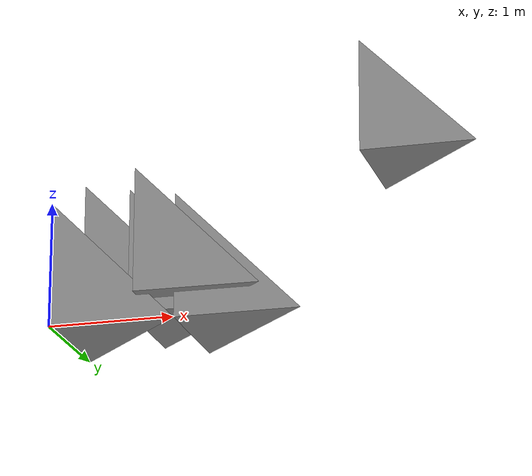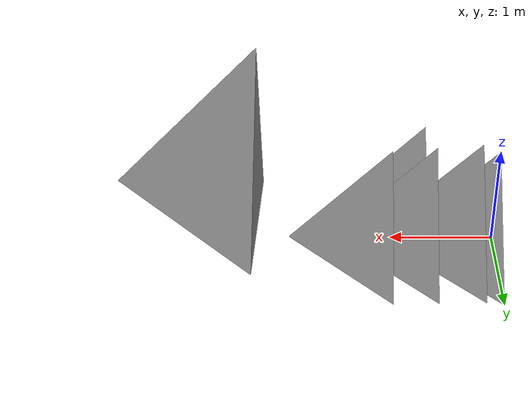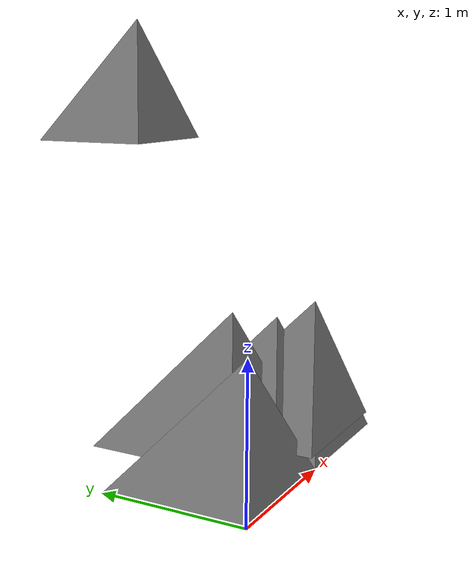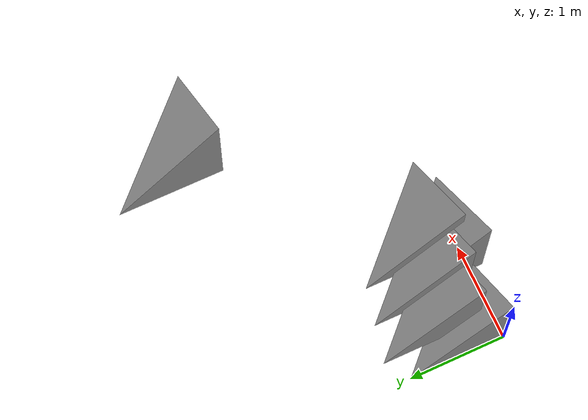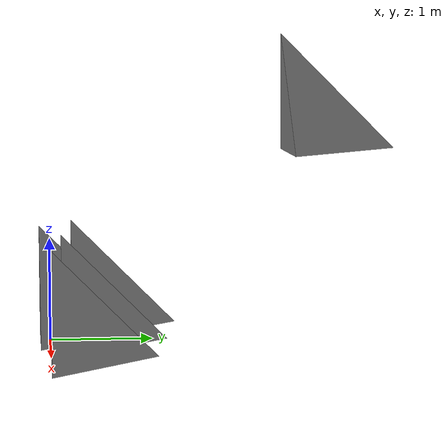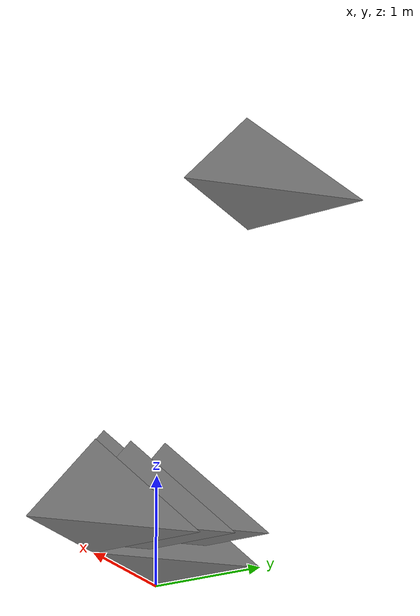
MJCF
<mujoco model="contact_route_mesh_mesh">
  <option gravity="0 0 0"/>
  <asset>
    <mesh name="tetra" vertex="0 0 0 1 0 0 0 1 0 0 0 1"
          face="0 2 1 0 1 3 0 3 2 1 2 3"/>
  </asset>
  <contact>
    <pair geom1="mesh_a_no_contact" geom2="mesh_b_no_contact"/>
    <pair geom1="mesh_a_shallow" geom2="mesh_b_shallow"/>
    <pair geom1="mesh_a_deep" geom2="mesh_b_deep"/>
    <pair geom1="mesh_a_off_axis" geom2="mesh_b_off_axis"/>
    <pair geom1="mesh_a_near_touch" geom2="mesh_b_near_touch"/>
  </contact>
  <worldbody>
    <body name="mesh_a_no_contact">
      <freejoint/>
      <inertial pos="0 0 0" mass="1" diaginertia="1 1 1"/>
      <geom name="mesh_a_no_contact" type="mesh" mesh="tetra"/>
    </body>
    <body name="mesh_b_no_contact" pos="2 2 2">
      <freejoint/>
      <inertial pos="0 0 0" mass="1" diaginertia="1 1 1"/>
      <geom name="mesh_b_no_contact" type="mesh" mesh="tetra"/>
    </body>
    <body name="mesh_a_shallow">
      <freejoint/>
      <inertial pos="0 0 0" mass="1" diaginertia="1 1 1"/>
      <geom name="mesh_a_shallow" type="mesh" mesh="tetra"/>
    </body>
    <body name="mesh_b_shallow" pos="0.6 0.1 0.1">
      <freejoint/>
      <inertial pos="0 0 0" mass="1" diaginertia="1 1 1"/>
      <geom name="mesh_b_shallow" type="mesh" mesh="tetra"/>
    </body>
    <body name="mesh_a_deep">
      <freejoint/>
      <inertial pos="0 0 0" mass="1" diaginertia="1 1 1"/>
      <geom name="mesh_a_deep" type="mesh" mesh="tetra"/>
    </body>
    <body name="mesh_b_deep" pos="0.2 0.2 0.2">
      <freejoint/>
      <inertial pos="0 0 0" mass="1" diaginertia="1 1 1"/>
      <geom name="mesh_b_deep" type="mesh" mesh="tetra"/>
    </body>
    <body name="mesh_a_off_axis">
      <freejoint/>
      <inertial pos="0 0 0" mass="1" diaginertia="1 1 1"/>
      <geom name="mesh_a_off_axis" type="mesh" mesh="tetra"/>
    </body>
    <body name="mesh_b_off_axis" pos="0.7 -0.1 0.2" euler="0.3 0.2 0.4">
      <freejoint/>
      <inertial pos="0 0 0" mass="1" diaginertia="1 1 1"/>
      <geom name="mesh_b_off_axis" type="mesh" mesh="tetra"/>
    </body>
    <body name="mesh_a_near_touch">
      <freejoint/>
      <inertial pos="0 0 0" mass="1" diaginertia="1 1 1"/>
      <geom name="mesh_a_near_touch" type="mesh" mesh="tetra"/>
    </body>
    <body name="mesh_b_near_touch" pos="0.999 0 0">
      <freejoint/>
      <inertial pos="0 0 0" mass="1" diaginertia="1 1 1"/>
      <geom name="mesh_b_near_touch" type="mesh" mesh="tetra"/>
    </body>
  </worldbody>
</mujoco>
